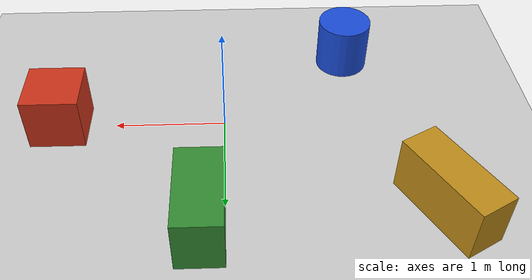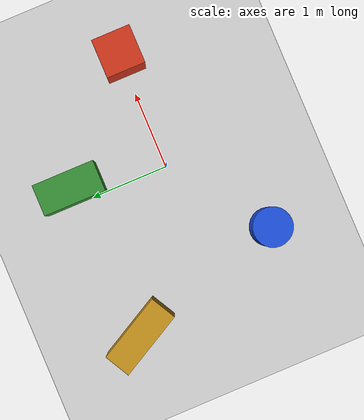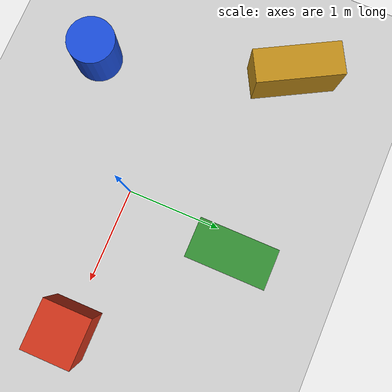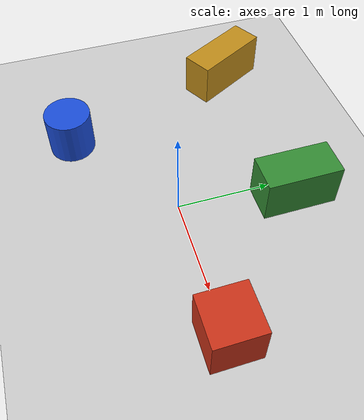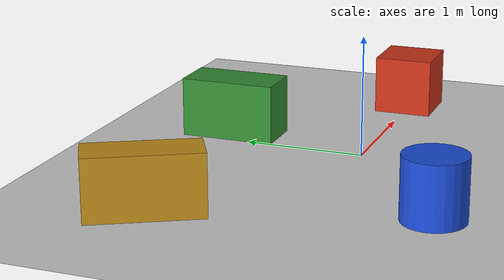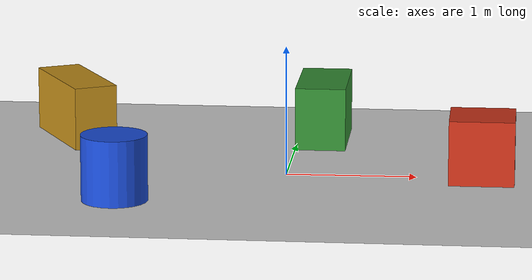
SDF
<?xml version="1.0"?>
<sdf version="1.6">
  <world name="simple_obstacles">
    <plugin name="gazebo_ros_init" filename="libgazebo_ros_init.so"/>
    <plugin name="gazebo_ros_factory" filename="libgazebo_ros_factory.so"/>

    <gravity>0 0 -9.8</gravity>

    <include>
      <uri>model://ground_plane</uri>
    </include>

    <include>
      <uri>model://sun</uri>
    </include>

    <model name="box_obstacle_1">
      <static>true</static>
      <pose>1.5 0.0 0.25 0 0 0</pose>
      <link name="link">
        <collision name="collision">
          <geometry>
            <box>
              <size>0.5 0.5 0.5</size>
            </box>
          </geometry>
        </collision>
        <visual name="visual">
          <geometry>
            <box>
              <size>0.5 0.5 0.5</size>
            </box>
          </geometry>
          <material>
            <ambient>0.8 0.2 0.1 1</ambient>
            <diffuse>0.8 0.2 0.1 1</diffuse>
          </material>
        </visual>
      </link>
    </model>

    <model name="box_obstacle_2">
      <static>true</static>
      <pose>0.2 1.2 0.25 0 0 0</pose>
      <link name="link">
        <collision name="collision">
          <geometry>
            <box>
              <size>0.4 0.8 0.5</size>
            </box>
          </geometry>
        </collision>
        <visual name="visual">
          <geometry>
            <box>
              <size>0.4 0.8 0.5</size>
            </box>
          </geometry>
          <material>
            <ambient>0.2 0.55 0.2 1</ambient>
            <diffuse>0.2 0.55 0.2 1</diffuse>
          </material>
        </visual>
      </link>
    </model>

    <model name="cylinder_obstacle_1">
      <static>true</static>
      <pose>-1.2 -0.9 0.25 0 0 0</pose>
      <link name="link">
        <collision name="collision">
          <geometry>
            <cylinder>
              <radius>0.25</radius>
              <length>0.5</length>
            </cylinder>
          </geometry>
        </collision>
        <visual name="visual">
          <geometry>
            <cylinder>
              <radius>0.25</radius>
              <length>0.5</length>
            </cylinder>
          </geometry>
          <material>
            <ambient>0.1 0.3 0.85 1</ambient>
            <diffuse>0.1 0.3 0.85 1</diffuse>
          </material>
        </visual>
      </link>
    </model>

    <model name="box_obstacle_3">
      <static>true</static>
      <pose>-1.8 1.1 0.25 0 0 0.5</pose>
      <link name="link">
        <collision name="collision">
          <geometry>
            <box>
              <size>0.35 0.9 0.5</size>
            </box>
          </geometry>
        </collision>
        <visual name="visual">
          <geometry>
            <box>
              <size>0.35 0.9 0.5</size>
            </box>
          </geometry>
          <material>
            <ambient>0.75 0.55 0.1 1</ambient>
            <diffuse>0.75 0.55 0.1 1</diffuse>
          </material>
        </visual>
      </link>
    </model>
  </world>
</sdf>
